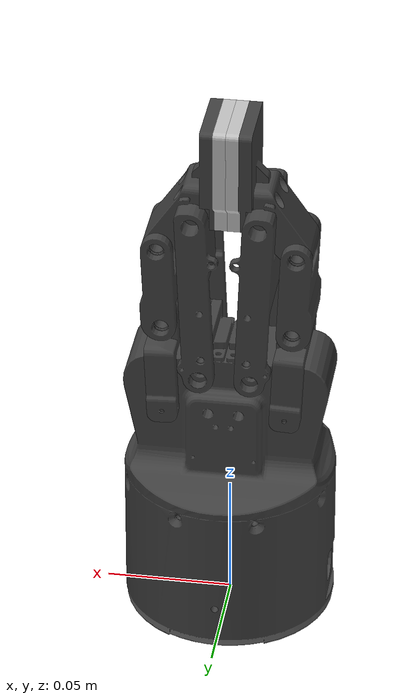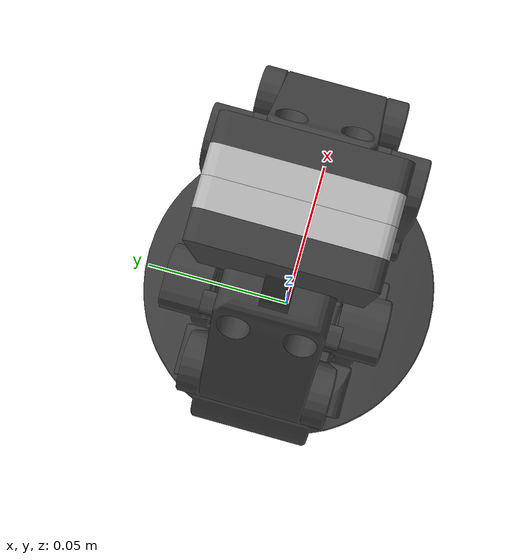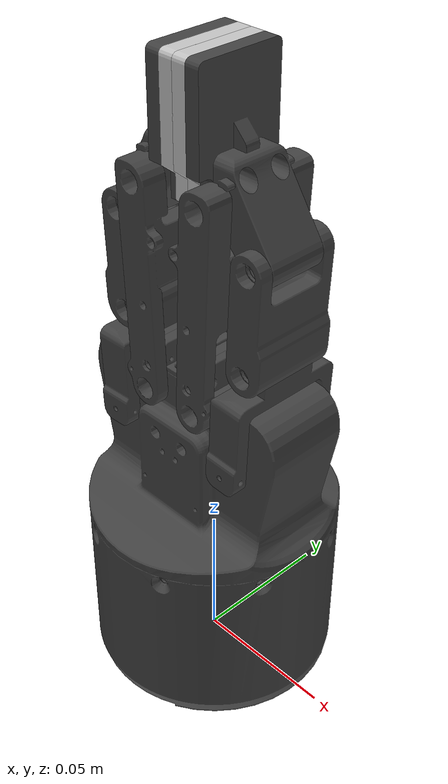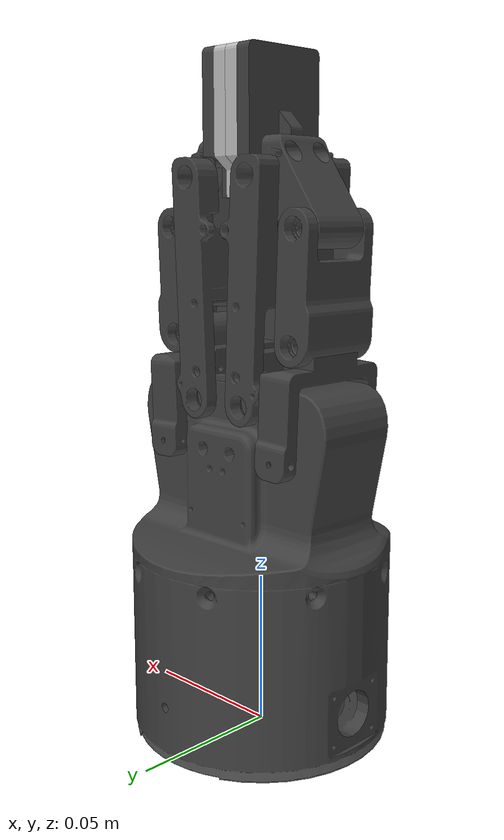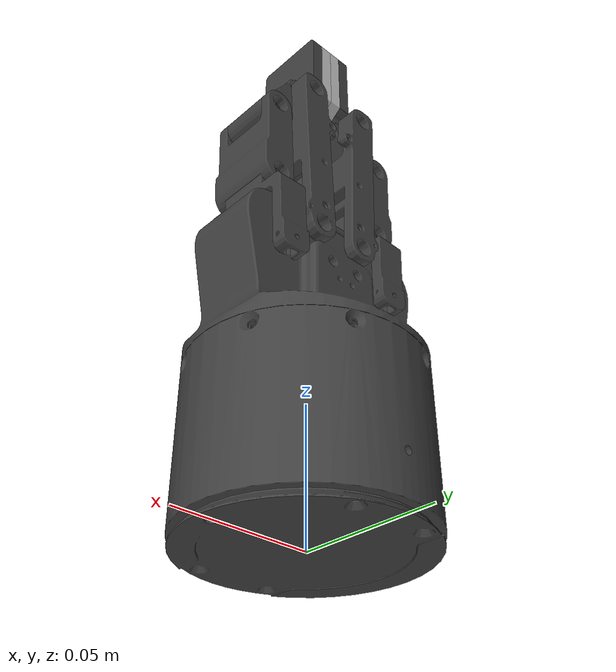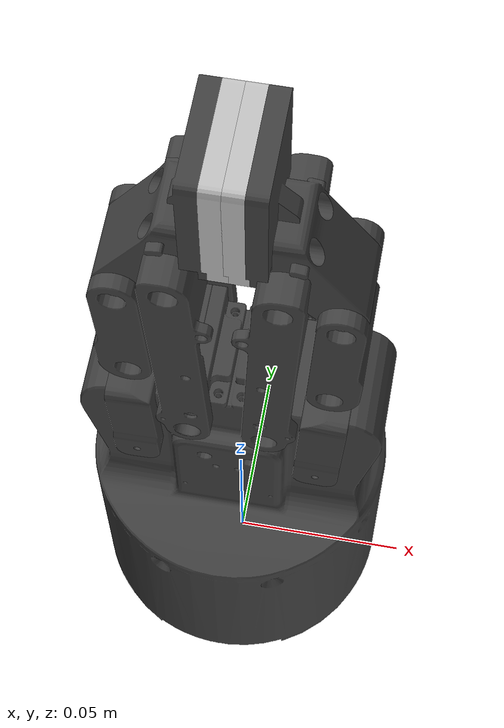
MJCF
<mujoco model="eg01_p5_5_sw2urdf">
  <compiler angle="radian" meshdir="..\meshes" autolimits="true"/>

  <option cone="elliptic" impratio="10"/>

  <asset>
    <mesh name="base_link" file="base_link.STL"/>
    <mesh name="Left_L1" file="Left_L1.STL"/>
    <mesh name="Left_L2" file="Left_L2.STL"/>
    <mesh name="Left_L3" file="Left_L3.STL"/>
    <mesh name="Left_finger_plate" file="Left_finger_plate.STL"/>
    <mesh name="Left_finger_rubber" file="Left_finger_rubber.STL"/>
    <mesh name="Left_L4" file="Left_L4.STL"/>
    <mesh name="Right_L1" file="Right_L1.STL"/>
    <mesh name="Right_L2" file="Right_L2.STL"/>
    <mesh name="Right_L3" file="Right_L3.STL"/>
    <mesh name="Right_finger_plate" file="Right_finger_plate.STL"/>
    <mesh name="Right_finger_rubber" file="Right_finger_rubber.STL"/>
    <mesh name="Right_L4" file="Right_L4.STL"/>
  </asset>

  <default>
    <default class="eg01">
      <mesh scale="0.001 0.001 0.001"/>
      <general biastype="affine"/>

      <default class="driver">
        <joint range="0 0.8" armature="0.005" damping="0.1" solimplimit="0.95 0.99 0.001" solreflimit="0.005 1"/>
      </default>
      <default class="follower">
        <joint range="-0.872664 0.872664" armature="0.001" pos="0 -0.018 0.0065" solimplimit="0.95 0.99 0.001" solreflimit="0.005 1"/>
      </default>
      <default class="spring_link">
        <joint range="-0.29670597283 0.8" armature="0.001" stiffness="0.05" springref="2.62" damping="0.00125"/>
      </default>
      <default class="coupler">
        <joint range="-1.57 0" armature="0.001" solimplimit="0.95 0.99 0.001" solreflimit="0.005 1"/>
      </default>

      <default class="visual">
        <geom type="mesh" contype="0" conaffinity="0" group="2"/>
      </default>
      <default class="collision">
        <geom type="mesh" group="3"/>
        <default class="pad_box1">
          <geom mass="0" type="box" pos="0 -0.0026 0.028125" size="0.011 0.004 0.009375" friction="0.7"
            solimp="0.95 0.99 0.001" solref="0.004 1" priority="1" rgba="0.55 0.55 0.55 1"/>
        </default>
        <default class="pad_box2">
          <geom mass="0" type="box" pos="0 -0.0026 0.009375" size="0.011 0.004 0.009375" friction="0.6"
            solimp="0.95 0.99 0.001" solref="0.004 1" priority="1" rgba="0.45 0.45 0.45 1"/>
        </default>
      </default>
    </default>
  </default>

  <worldbody>
    <body name="base_link" pos="0 0 0" childclass="eg01">
      <geom type="mesh" contype="0" conaffinity="0" group="1" density="0" rgba="0.25098 0.25098 0.25098 1" mesh="base_link"/>
      <geom type="mesh" rgba="0.25098 0.25098 0.25098 1" class="collision" mesh="base_link"/>
      <body name="Left_L1" pos="-0.024 0 0.0957" quat="0.999762 0 -0.0218326 0">
        <inertial pos="1.43904e-07 -3.34855e-09 0.0211388" quat="0.707107 0.707107 0.000433452 -0.000433452" mass="0.020296" diaginertia="6.30267e-06 3.87088e-06 2.92634e-06"/>
        <joint name="Left_J1" pos="0 0 0" axis="0 1 0" range="-1.571 1.571" actuatorfrcrange="-50 50"/>
        <geom type="mesh" contype="0" conaffinity="0" group="1" density="0" rgba="0.25098 0.25098 0.25098 1" class="collision" mesh="Left_L1"/>
        <geom type="mesh" rgba="0.25098 0.25098 0.25098 1" mesh="Left_L1"/>
        <body name="Left_L2" pos="0 0 0.034">
          <inertial pos="-0.000647192 -2.92504e-09 0.0156751" quat="0.706829 0.706825 0.0198903 -0.0198901" mass="0.0233775" diaginertia="4.19732e-06 2.50182e-06 2.33741e-06"/>
          <joint name="Left_J2" pos="0 0 0" axis="0 -1 0" range="-1.571 0.000" actuatorfrcrange="-50 50" stiffness="0.05" springref="20.62" solimplimit="0.95 0.99 0.001" solreflimit="0.005 1"/>
          <geom type="mesh" contype="0" conaffinity="0" group="1" density="0" rgba="0.25098 0.25098 0.25098 1" class="collision" mesh="Left_L2"/>
          <geom type="mesh" rgba="0.25098 0.25098 0.25098 1" mesh="Left_L2"/>
          <body name="Left_L3" pos="0 0 0.034" quat="0.922094 0 0.386967 0">
            <inertial pos="-0.0044967 -6.88183e-11 0.025979" quat="0.986589 0 -0.163225 0" mass="0.0444524" diaginertia="1.51863e-05 1.40838e-05 3.48548e-06"/>
            <joint name="Left_J3" pos="0 0 0" axis="0 -1 0" range="-1.571 0.000" actuatorfrcrange="-50 50" solimplimit="0.95 0.99 0.001" solreflimit="0.005 1"/>
            <geom type="mesh" contype="0" conaffinity="0" group="1" density="0" rgba="0.25098 0.25098 0.25098 1" class="collision" mesh="Left_L3"/>
            <geom type="mesh" rgba="0.25098 0.25098 0.25098 1" mesh="Left_L3"/>
            <geom pos="0.000145846 0 0.0247601" quat="0.281788 -0.648533 -0.648533 0.281788" type="mesh" contype="0" conaffinity="0" group="1" density="0" rgba="0.25098 0.25098 0.25098 1" mesh="Left_finger_plate"/>
            <geom pos="0.000145846 0 0.0247601" quat="0.281788 -0.648533 -0.648533 0.281788" type="mesh" rgba="0.25098 0.25098 0.25098 0.5" class="collision" mesh="Left_finger_plate"/>
              <body name="Left_finger_rubber">
                <geom pos="0.000145846 0 0.0247601" quat="0.281788 -0.648533 -0.648533 0.281788" type="mesh" contype="0" conaffinity="0" group="1" density="0" rgba="0.752941 0.752941 0.752941 1" mesh="Left_finger_rubber"/>
                <geom pos="0.000145846 0 0.0247601" quat="0.281788 -0.648533 -0.648533 0.281788" type="mesh" rgba="0.752941 0.752941 0.752941 1" class="collision" mesh="Left_finger_rubber"/>
              </body>
          </body>
        </body>
      </body>
      <body name="Left_L4" pos="-0.01 0 0.1107" quat="0.999762 0 -0.0218149 0">
        <inertial pos="-0.000775167 1.18348e-09 0.0401951" quat="1 0 -0.000433959 0" mass="0.0414352" diaginertia="2.23144e-05 1.394e-05 9.29223e-06"/>
        <joint name="Left_J4" pos="0 0 0" axis="0 1 0" range="-1.571 -0.09" actuatorfrcrange="-50 50"/>
        <geom type="mesh" contype="0" conaffinity="0" group="1" density="0" rgba="0.25098 0.25098 0.25098 1" class="collision" mesh="Left_L4"/>
        <geom type="mesh" rgba="0.25098 0.25098 0.25098 1" mesh="Left_L4"/>
      </body>
      <body name="Right_L1" pos="0.024 0 0.0957" quat="0 -0.0218326 0 -0.999762">
        <inertial pos="9.39041e-08 -3.34855e-09 0.0211388" quat="0.707107 0.707107 0.000433452 -0.000433452" mass="0.020296" diaginertia="6.30267e-06 3.87088e-06 2.92634e-06"/>
        <joint name="Right_J1" pos="0 0 0" axis="0 -1 0" range="-1.571 1.571" actuatorfrcrange="-50 50"/>
        <geom type="mesh" contype="0" conaffinity="0" group="1" density="0" rgba="0.25098 0.25098 0.25098 1" class="collision" mesh="Right_L1"/>
        <geom type="mesh" rgba="0.25098 0.25098 0.25098 1" mesh="Right_L1"/>
        <body name="Right_L2" pos="0 0 0.034">
          <inertial pos="-0.000647192 -2.92504e-09 0.0156751" quat="0.706829 0.706825 0.0198903 -0.0198901" mass="0.0233775" diaginertia="4.19732e-06 2.50182e-06 2.33741e-06"/>
          <joint name="Right_J2" pos="0 0 0" axis="0 -1 0" range="-1.571 0.000" actuatorfrcrange="-50 50" stiffness="0.05" springref="20.62" solimplimit="0.95 0.99 0.001" solreflimit="0.005 1"/>
          <geom type="mesh" contype="0" conaffinity="0" group="1" density="0" rgba="0.25098 0.25098 0.25098 1" class="collision" mesh="Right_L2"/>
          <geom type="mesh" rgba="0.25098 0.25098 0.25098 1" mesh="Right_L2"/>
          <body name="Right_L3" pos="0 0 0.034" quat="0.922094 0 0.386967 0">
            <inertial pos="-0.0044967 -6.88171e-11 0.025979" quat="0.986589 0 -0.163226 0" mass="0.0444524" diaginertia="1.51863e-05 1.40838e-05 3.48549e-06"/>
            <joint name="Right_J3" pos="0 0 0" axis="0 -1 0" range="-1.571 0.000" actuatorfrcrange="-50 50" solimplimit="0.95 0.99 0.001" solreflimit="0.005 1"/>
            <geom type="mesh" contype="0" conaffinity="0" group="1" density="0" rgba="0.25098 0.25098 0.25098 1" class="collision" mesh="Right_L3"/>
            <geom type="mesh" rgba="0.25098 0.25098 0.25098 1" mesh="Right_L3"/>
            <geom pos="0.000145846 0 0.0247601" quat="0.648533 0.28179 0.28179 0.648533" type="mesh" contype="0" conaffinity="0" group="1" density="0" rgba="0.25098 0.25098 0.25098 1" mesh="Right_finger_plate"/>
            <geom pos="0.000145846 0 0.0247601" quat="0.648533 0.28179 0.28179 0.648533" type="mesh" rgba="0.25098 0.25098 0.25098 1" class="collision" mesh="Right_finger_plate"/>
              <body name="Right_finger_rubber">
                <geom pos="0.0111108 0 0.0349958" quat="0.648533 -0.28179 0.28179 -0.648533" type="mesh" contype="0" conaffinity="0" group="1" density="0" rgba="0.752941 0.752941 0.752941 1" mesh="Right_finger_rubber"/>
                <geom pos="0.0111108 0 0.0349958" quat="0.648533 -0.28179 0.28179 -0.648533" type="mesh" rgba="0.752941 0.752941 0.752941 1" class="collision" mesh="Right_finger_rubber"/>
              </body>
          </body>
        </body>
      </body>
      <body name="Right_L4" pos="0.01 0 0.1107" quat="0 -0.0218149 0 -0.999762">
        <inertial pos="-0.000775167 1.18348e-09 0.0401951" quat="1 0 -0.000433959 0" mass="0.0414352" diaginertia="2.23144e-05 1.394e-05 9.29223e-06"/>
        <joint name="Right_J4" pos="0 0 0" axis="0 -1 0" range="0.09 1.571" actuatorfrcrange="-50 50"/>
        <geom type="mesh" contype="0" conaffinity="0" group="1" density="0" rgba="0.25098 0.25098 0.25098 1" class="collision" mesh="Right_L4"/>
        <geom type="mesh" rgba="0.25098 0.25098 0.25098 1" mesh="Right_L4"/>
      </body>
    </body>
  </worldbody>

  <contact>
    <exclude body1="base_link" body2="Left_L1"/>
    <exclude body1="base_link" body2="Left_L4"/>
    <exclude body1="base_link" body2="Right_L1"/>
    <exclude body1="base_link" body2="Right_L4"/>
    <exclude body1="Left_L1" body2="Left_L2"/>
    <exclude body1="Right_L1" body2="Right_L2"/>
    <exclude body1="Left_finger_rubber" body2="Right_finger_rubber"/>
  </contact>

  <tendon>
    <fixed name="split">
      <joint joint="Left_J1" coef="0.5"/>
      <joint joint="Right_J1" coef="-0.5"/>
    </fixed>
  </tendon>

  <equality>
    <connect anchor="0 0 0.068" body1="Left_L4" body2="Left_L3" solimp="0.95 0.99 0.001" solref="0.005 1"/>
    <connect anchor="0 0 0.068" body1="Right_L4" body2="Right_L3" solimp="0.95 0.99 0.001" solref="0.005 1"/>
  </equality>

  <actuator>
    <general name="L1_actuator" tendon="split" forcerange="-5 5" ctrlrange="-20 5"
      gainprm="0.3137255 0 0" biasprm="0 -100 -10"/>
  </actuator>

</mujoco>
